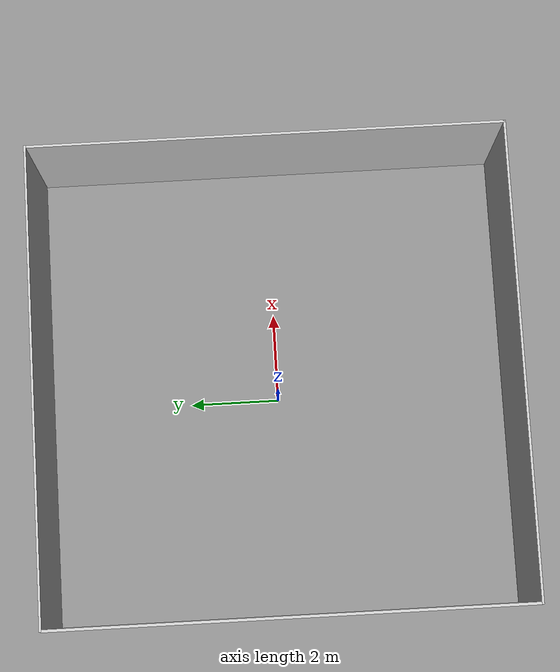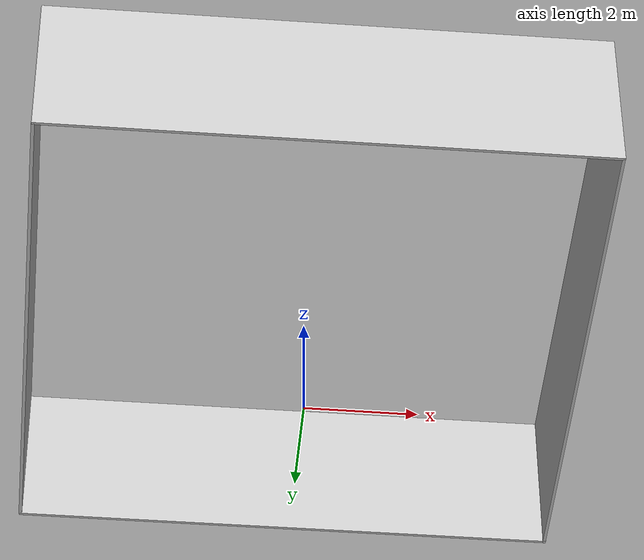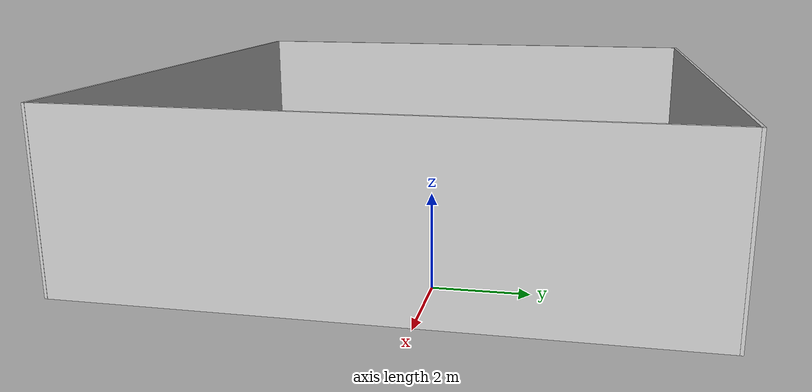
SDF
<?xml version="1.0" ?>
<sdf version="1.7">
        <plugin filename="ignition-gazebo-contact-system"
                name="ignition::gazebo::systems::Contact">
        </plugin>

    <model name="four_walls">
        <link name='plate1'>
            <pose>0.03 5 3 0 0 0</pose>
            <visual name='visual'>
              <geometry>
                <box>
                  <size>10 0.05 3</size>
                </box>
              </geometry>
              <material>
                <ambient>0.8 0.8 0.8 1</ambient>
                <diffuse>0.8 0.8 0.8 1</diffuse>
                <pbr>
                    <metal>
                      <albedo_map>wall.png</albedo_map>
                      <normal_map>wall.png</normal_map>
                    </metal>
                  </pbr>
              </material>
            </visual>
            <collision name='visual'>
              <geometry>
                <box>
                  <size>10 0.05 3</size>
                </box>
              </geometry>
            </collision>
        </link>
        <link name='plate2'>
            <pose>5 0 3 0 0 0</pose>
            <visual name='visual'>
              <geometry>
                <box>
                  <size>0.055 10 3</size>
                </box>
              </geometry>
                <ambient>0.8 0.8 0.8 1</ambient>
                <diffuse>0.8 0.8 0.8 1</diffuse>
              <material>
                <ambient>0.8 0.8 0.8 1</ambient>
                <diffuse>0.8 0.8 0.8 1</diffuse>
                <pbr>
                    <metal>
                      <albedo_map>wall.png</albedo_map>
                      <normal_map>wall.png</normal_map>
                    </metal>
                  </pbr>
              </material>
            </visual>
            <collision name='visual'>
              <geometry>
                <box>
                  <size>0.055 10 3</size>
                </box>
              </geometry>
            </collision>
        </link>
        <link name='plate3'>
            <pose>-4.95 0 3 0 0 0</pose>
            <visual name='visual'>
              <geometry>
                <box>
                  <size>0.06 10 3</size>
                </box>
              </geometry>
              <material>
                <ambient>0.8 0.8 0.8 1</ambient>
                <diffuse>0.8 0.8 0.8 1</diffuse>
                <pbr>
                    <metal>
                      <albedo_map>wall.png</albedo_map>
                      <normal_map>wall.png</normal_map>
                    </metal>
                  </pbr>
              </material>
            </visual>
            <collision name='visual'>
              <geometry>
                <box>
                  <size>0.06 10 3</size>
                </box>
              </geometry>
            </collision>
        </link>
        <link name='plate4'>
            <pose>0.03 -5 3 0 0 0</pose>
            <visual name='visual'>
              <geometry>
                <box>
                  <size>10 0.05 3</size>
                </box>
              </geometry>
              <material>
                <ambient>0.8 0.8 0.8 1</ambient>
                <diffuse>0.8 0.8 0.8 1</diffuse>
                <pbr>
                    <metal>
                      <albedo_map>hit_me.png</albedo_map>
                      <normal_map>wall.png</normal_map>
                    </metal>
                  </pbr>
              </material>
            </visual>
            <collision name='visual'>
              <geometry>
                <box>
                  <size>10 0.05 3</size>
                </box>
              </geometry>
            </collision>
        </link>
    </model>
    <plugin filename="ignition-gazebo-touchplugin-system"
            name="ignition::gazebo::systems::TouchPlugin">
        <target>robot</target>
        <namespace>plate4</namespace>
        <time>0.001</time>
        <enabled>true</enabled>
    </plugin>
</sdf>
